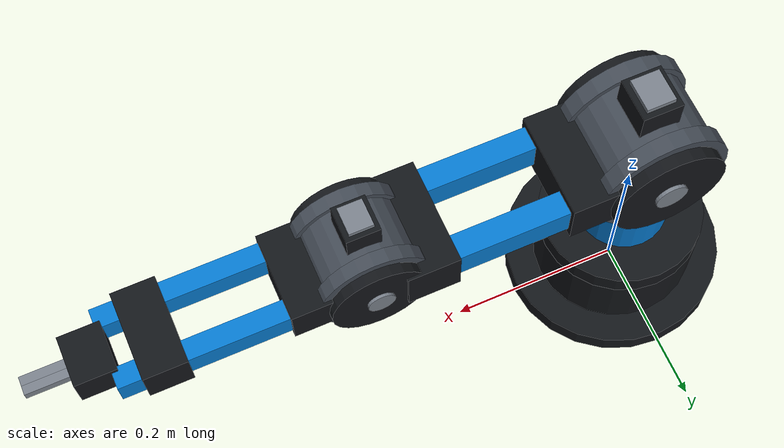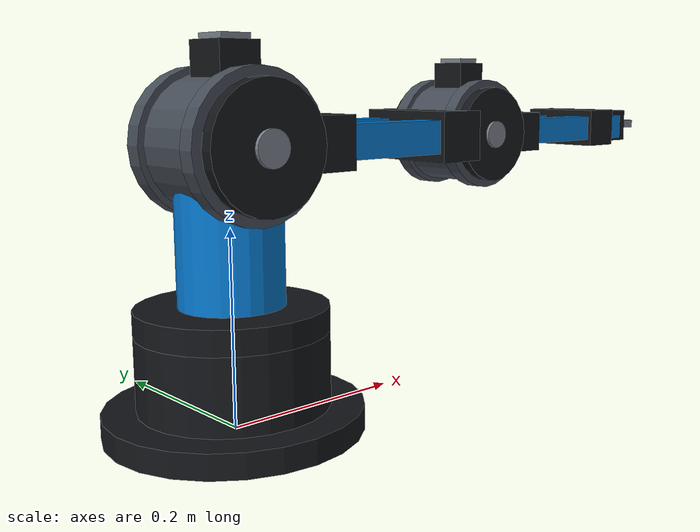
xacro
<?xml version="1.0"?>
<robot xmlns:xacro="http://www.ros.org/wiki/xacro" name="arm_digital_twin">
  <xacro:arg name="arm_model" default="moveo"/>
  <xacro:property name="arm_model" value="$(arg arm_model)"/>

  <xacro:property name="wrist_length" value="0.14"/>
  <xacro:property name="base_radius" value="0.085"/>
  <xacro:property name="link_radius" value="0.055"/>

  <xacro:if value="${arm_model == 'moveo'}">
    <xacro:property name="base_height" value="0.28"/>
    <xacro:property name="link1_length" value="0.32"/>
    <xacro:property name="link2_length" value="0.27"/>
    <xacro:property name="gripper_length" value="0.085"/>
    <xacro:property name="gripper_width" value="0.010"/>
    <xacro:property name="base_radius" value="0.095"/>
    <xacro:property name="link_radius" value="0.050"/>
  </xacro:if>
  <xacro:if value="${arm_model == 'mitsubishi'}">
    <xacro:property name="base_height" value="0.36"/>
    <xacro:property name="link1_length" value="0.40"/>
    <xacro:property name="link2_length" value="0.32"/>
    <xacro:property name="gripper_length" value="0.105"/>
    <xacro:property name="gripper_width" value="0.014"/>
    <xacro:property name="base_radius" value="0.12"/>
    <xacro:property name="link_radius" value="0.075"/>
  </xacro:if>
  <xacro:if value="${arm_model == 'generic'}">
    <xacro:property name="base_height" value="0.24"/>
    <xacro:property name="link1_length" value="0.25"/>
    <xacro:property name="link2_length" value="0.21"/>
    <xacro:property name="gripper_length" value="0.070"/>
    <xacro:property name="gripper_width" value="0.008"/>
    <xacro:property name="base_radius" value="0.075"/>
    <xacro:property name="link_radius" value="0.035"/>
  </xacro:if>
  <xacro:if value="${arm_model == 'franka'}">
    <xacro:property name="base_height" value="0.30"/>
    <xacro:property name="link1_length" value="0.35"/>
    <xacro:property name="link2_length" value="0.30"/>
    <xacro:property name="gripper_length" value="0.10"/>
    <xacro:property name="gripper_width" value="0.012"/>
  </xacro:if>

  <xacro:if value="${arm_model == 'moveo'}">
    <material name="Arm">
      <color rgba="0.02 0.48 0.82 1.0"/>
    </material>
  </xacro:if>
  <xacro:if value="${arm_model == 'mitsubishi'}">
    <material name="Arm">
      <color rgba="0.78 0.12 0.08 1.0"/>
    </material>
  </xacro:if>
  <xacro:if value="${arm_model == 'generic'}">
    <material name="Arm">
      <color rgba="0.92 0.62 0.06 1.0"/>
    </material>
  </xacro:if>
  <xacro:if value="${arm_model == 'franka'}">
    <material name="Arm">
      <color rgba="0.88 0.89 0.91 1.0"/>
    </material>
  </xacro:if>

  <material name="Dark">
    <color rgba="0.075 0.085 0.10 1.0"/>
  </material>
  <material name="Metal">
    <color rgba="0.48 0.51 0.55 1.0"/>
  </material>
  <material name="JointAccent">
    <color rgba="0.27 0.30 0.34 1.0"/>
  </material>

  <link name="base_link">
    <visual>
      <geometry><cylinder radius="${base_radius}" length="0.10"/></geometry>
      <origin xyz="0 0 0.05"/>
      <material name="Dark"/>
    </visual>
    <visual>
      <geometry><cylinder radius="${base_radius * 1.35}" length="0.025"/></geometry>
      <origin xyz="0 0 0.0125"/>
      <material name="Dark"/>
    </visual>
    <collision>
      <geometry><cylinder radius="${base_radius}" length="0.10"/></geometry>
      <origin xyz="0 0 0.05"/>
    </collision>
    <inertial>
      <origin xyz="0 0 0.05"/>
      <mass value="5.0"/>
      <inertia ixx="0.02" ixy="0" ixz="0" iyy="0.02" iyz="0" izz="0.01"/>
    </inertial>
  </link>

  <link name="base_rot">
    <visual>
      <geometry>
        <cylinder radius="${link_radius * 1.05}" length="${base_height - 0.10}"/>
      </geometry>
      <origin xyz="0 0 ${(base_height - 0.10) / 2}"/>
      <material name="Arm"/>
    </visual>
    <visual>
      <geometry><cylinder radius="${base_radius}" length="0.025"/></geometry>
      <origin xyz="0 0 0.0125"/>
      <material name="Dark"/>
    </visual>
    <collision>
      <geometry>
        <cylinder radius="${link_radius * 1.05}" length="${base_height - 0.10}"/>
      </geometry>
      <origin xyz="0 0 ${(base_height - 0.10) / 2}"/>
    </collision>
    <inertial>
      <origin xyz="0 0 ${(base_height - 0.08) / 2}"/>
      <mass value="1.5"/>
      <inertia ixx="0.01" ixy="0" ixz="0" iyy="0.01" iyz="0" izz="0.01"/>
    </inertial>
  </link>

  <joint name="joint1" type="revolute">
    <parent link="base_link"/>
    <child link="base_rot"/>
    <origin xyz="0 0 0.10"/>
    <axis xyz="0 0 1"/>
    <limit lower="-2.967" upper="2.967" effort="80" velocity="2.0"/>
  </joint>

  <xacro:macro name="arm_segment" params="name length radius">
    <link name="${name}">
      <xacro:if value="${arm_model == 'moveo'}">
        <visual>
          <geometry>
            <box size="${length - radius * 1.2} ${radius * 0.55} ${radius * 0.72}"/>
          </geometry>
          <origin xyz="${(length + radius * 1.2) / 2} ${radius * 0.82} 0"/>
          <material name="Arm"/>
        </visual>
        <visual>
          <geometry>
            <box size="${length - radius * 1.2} ${radius * 0.55} ${radius * 0.72}"/>
          </geometry>
          <origin xyz="${(length + radius * 1.2) / 2} ${-radius * 0.82} 0"/>
          <material name="Arm"/>
        </visual>
        <visual>
          <geometry><box size="${radius * 1.15} ${radius * 2.4} ${radius * 1.1}"/></geometry>
          <origin xyz="${length * 0.25} 0 0"/>
          <material name="Dark"/>
        </visual>
        <visual>
          <geometry><box size="${radius * 1.15} ${radius * 2.4} ${radius * 1.1}"/></geometry>
          <origin xyz="${length * 0.82} 0 0"/>
          <material name="Dark"/>
        </visual>
      </xacro:if>
      <xacro:if value="${arm_model == 'mitsubishi'}">
        <visual>
          <geometry>
            <cylinder radius="${radius}" length="${length - radius * 1.2}"/>
          </geometry>
          <origin xyz="${(length + radius * 1.2) / 2} 0 0" rpy="0 ${pi / 2} 0"/>
          <material name="Arm"/>
        </visual>
        <visual>
          <geometry><cylinder radius="${radius * 1.10}" length="${radius * 0.55}"/></geometry>
          <origin xyz="${radius * 1.45} 0 0" rpy="0 ${pi / 2} 0"/>
          <material name="Dark"/>
        </visual>
        <visual>
          <geometry><cylinder radius="${radius * 1.10}" length="${radius * 0.55}"/></geometry>
          <origin xyz="${length - radius * 0.35} 0 0" rpy="0 ${pi / 2} 0"/>
          <material name="Dark"/>
        </visual>
      </xacro:if>
      <xacro:if value="${arm_model == 'generic'}">
        <visual>
          <geometry>
            <box size="${length - radius * 1.2} ${radius} ${radius * 1.10}"/>
          </geometry>
          <origin xyz="${(length + radius * 1.2) / 2} 0 0"/>
          <material name="Arm"/>
        </visual>
        <visual>
          <geometry>
            <box size="${(length - radius * 1.2) * 0.72} ${radius * 1.72} ${radius * 0.18}"/>
          </geometry>
          <origin xyz="${(length + radius * 1.2) / 2} 0 ${radius * 0.58}"/>
          <material name="Dark"/>
        </visual>
      </xacro:if>
      <xacro:if value="${arm_model == 'franka'}">
        <visual>
          <geometry><cylinder radius="${radius}" length="${length - radius * 1.2}"/></geometry>
          <origin xyz="${(length + radius * 1.2) / 2} 0 0" rpy="0 ${pi / 2} 0"/>
          <material name="Arm"/>
        </visual>
      </xacro:if>
      <collision>
        <geometry><box size="${length} ${radius * 2.4} ${radius * 2.0}"/></geometry>
        <origin xyz="${length / 2} 0 0"/>
      </collision>
      <inertial>
        <origin xyz="${length / 2} 0 0"/>
        <mass value="1.0"/>
        <inertia ixx="0.01" ixy="0" ixz="0" iyy="0.02" iyz="0" izz="0.02"/>
      </inertial>
    </link>
    <link name="${name}_pivot_housing">
      <visual>
        <geometry><cylinder radius="${radius * 1.35}" length="${radius * 1.50}"/></geometry>
        <origin xyz="0 0 0" rpy="${pi / 2} 0 0"/>
        <material name="joint_accent">
          <color rgba="0.27 0.30 0.34 1.0"/>
        </material>
      </visual>
      <visual>
        <geometry><cylinder radius="${radius * 1.48}" length="${radius * 0.38}"/></geometry>
        <origin xyz="0 ${radius * 0.92} 0" rpy="${pi / 2} 0 0"/>
        <material name="joint_accent">
          <color rgba="0.27 0.30 0.34 1.0"/>
        </material>
      </visual>
      <visual>
        <geometry><cylinder radius="${radius * 1.48}" length="${radius * 0.38}"/></geometry>
        <origin xyz="0 ${-radius * 0.92} 0" rpy="${pi / 2} 0 0"/>
        <material name="joint_accent">
          <color rgba="0.27 0.30 0.34 1.0"/>
        </material>
      </visual>
    </link>
    <joint name="${name}_pivot_housing_fixed" type="fixed">
      <parent link="${name}"/>
      <child link="${name}_pivot_housing"/>
    </joint>
    <link name="${name}_pivot_covers">
      <visual>
        <geometry><box size="${radius * 0.90} ${radius} ${radius * 0.80}"/></geometry>
        <origin xyz="0 0 ${radius * 1.55}"/>
        <material name="Dark"/>
      </visual>
      <visual>
        <geometry><cylinder radius="${radius * 1.28}" length="${radius * 0.28}"/></geometry>
        <origin xyz="0 ${radius * 1.25} 0" rpy="${pi / 2} 0 0"/>
        <material name="Dark"/>
      </visual>
      <visual>
        <geometry><cylinder radius="${radius * 1.28}" length="${radius * 0.28}"/></geometry>
        <origin xyz="0 ${-radius * 1.25} 0" rpy="${pi / 2} 0 0"/>
        <material name="Dark"/>
      </visual>
    </link>
    <joint name="${name}_pivot_covers_fixed" type="fixed">
      <parent link="${name}"/>
      <child link="${name}_pivot_covers"/>
    </joint>
    <link name="${name}_pivot_metal">
      <visual>
        <geometry><box size="${radius * 0.65} ${radius * 0.75} ${radius * 0.12}"/></geometry>
        <origin xyz="0 0 ${radius * 2.01}"/>
        <material name="Metal"/>
      </visual>
      <visual>
        <geometry><cylinder radius="${radius * 0.36}" length="${radius * 0.16}"/></geometry>
        <origin xyz="0 ${radius * 1.39} 0" rpy="${pi / 2} 0 0"/>
        <material name="Metal"/>
      </visual>
      <visual>
        <geometry><cylinder radius="${radius * 0.36}" length="${radius * 0.16}"/></geometry>
        <origin xyz="0 ${-radius * 1.39} 0" rpy="${pi / 2} 0 0"/>
        <material name="Metal"/>
      </visual>
    </link>
    <joint name="${name}_pivot_metal_fixed" type="fixed">
      <parent link="${name}"/>
      <child link="${name}_pivot_metal"/>
    </joint>
  </xacro:macro>

  <xacro:arm_segment name="link1" length="${link1_length}" radius="${link_radius}"/>
  <joint name="joint2" type="revolute">
    <parent link="base_rot"/>
    <child link="link1"/>
    <origin xyz="0 0 ${base_height - 0.10}"/>
    <axis xyz="0 1 0"/>
    <limit lower="-1.5708" upper="1.5708" effort="80" velocity="2.0"/>
  </joint>

  <xacro:arm_segment name="link2" length="${link2_length}" radius="${link_radius * 0.82}"/>
  <joint name="joint3" type="revolute">
    <parent link="link1"/>
    <child link="link2"/>
    <origin xyz="${link1_length} 0 0"/>
    <axis xyz="0 1 0"/>
    <limit lower="-1.5708" upper="1.5708" effort="60" velocity="2.0"/>
  </joint>

  <xacro:if value="${arm_model == 'mitsubishi'}">
    <link name="link3">
      <visual>
        <geometry>
          <cylinder radius="${link_radius * 0.72}" length="0.08"/>
        </geometry>
        <origin xyz="0.04 0 0" rpy="0 ${pi / 2} 0"/>
        <material name="Arm"/>
      </visual>
      <visual>
        <geometry>
          <cylinder radius="${link_radius}" length="0.025"/>
        </geometry>
        <origin xyz="0.0125 0 0" rpy="0 ${pi / 2} 0"/>
        <material name="Dark"/>
      </visual>
      <visual>
        <geometry>
          <cylinder radius="${link_radius * 0.84}" length="0.018"/>
        </geometry>
        <origin xyz="0.069 0 0" rpy="0 ${pi / 2} 0"/>
        <material name="JointAccent"/>
      </visual>
      <collision>
        <geometry><box size="0.08 ${link_radius * 1.4} ${link_radius * 1.4}"/></geometry>
        <origin xyz="0.04 0 0"/>
      </collision>
      <inertial>
        <origin xyz="0.04 0 0"/>
        <mass value="0.3"/>
        <inertia ixx="0.001" ixy="0" ixz="0" iyy="0.001" iyz="0" izz="0.001"/>
      </inertial>
    </link>
    <joint name="mitsubishi_wrist" type="fixed">
      <parent link="link2"/>
      <child link="link3"/>
      <origin xyz="${link2_length} 0 0"/>
    </joint>
  </xacro:if>

  <xacro:if value="${arm_model == 'franka'}">
    <xacro:arm_segment name="link3" length="0.22" radius="0.050"/>
    <joint name="joint4" type="revolute">
      <parent link="link2"/>
      <child link="link3"/>
      <origin xyz="${link2_length} 0 0"/>
      <axis xyz="1 0 0"/>
      <limit lower="-2.967" upper="2.967" effort="45" velocity="2.0"/>
    </joint>

    <xacro:arm_segment name="link4" length="0.20" radius="0.043"/>
    <joint name="joint5" type="revolute">
      <parent link="link3"/>
      <child link="link4"/>
      <origin xyz="0.22 0 0"/>
      <axis xyz="0 1 0"/>
      <limit lower="-2.094" upper="2.094" effort="35" velocity="2.0"/>
    </joint>

    <xacro:arm_segment name="link5" length="0.15" radius="0.038"/>
    <joint name="joint6" type="revolute">
      <parent link="link4"/>
      <child link="link5"/>
      <origin xyz="0.20 0 0"/>
      <axis xyz="1 0 0"/>
      <limit lower="-2.967" upper="2.967" effort="25" velocity="2.0"/>
    </joint>

    <xacro:arm_segment name="link6" length="${wrist_length}" radius="0.034"/>
    <joint name="joint7" type="revolute">
      <parent link="link5"/>
      <child link="link6"/>
      <origin xyz="0.15 0 0"/>
      <axis xyz="0 1 0"/>
      <limit lower="-2.967" upper="2.967" effort="15" velocity="2.0"/>
    </joint>
  </xacro:if>

  <link name="gripper_base">
    <visual>
      <geometry>
        <box size="${gripper_length * 0.52} ${gripper_width * 5.5} ${gripper_width * 4.0}"/>
      </geometry>
      <origin xyz="${gripper_length * 0.18} 0 0"/>
      <material name="Dark"/>
    </visual>
    <inertial>
      <mass value="0.1"/>
      <inertia ixx="0.001" ixy="0" ixz="0" iyy="0.001" iyz="0" izz="0.001"/>
    </inertial>
  </link>

  <xacro:if value="${arm_model == 'franka'}">
    <joint name="gripper_mount" type="fixed">
      <parent link="link6"/>
      <child link="gripper_base"/>
      <origin xyz="${wrist_length} 0 0"/>
    </joint>
  </xacro:if>
  <xacro:unless value="${arm_model == 'franka'}">
    <joint name="gripper_mount" type="fixed">
      <xacro:if value="${arm_model == 'mitsubishi'}">
        <parent link="link3"/>
      </xacro:if>
      <xacro:unless value="${arm_model == 'mitsubishi'}">
        <parent link="link2"/>
      </xacro:unless>
      <child link="gripper_base"/>
      <xacro:if value="${arm_model == 'mitsubishi'}">
        <origin xyz="0.08 0 0"/>
      </xacro:if>
      <xacro:unless value="${arm_model == 'mitsubishi'}">
        <origin xyz="${link2_length} 0 0"/>
      </xacro:unless>
    </joint>
  </xacro:unless>

  <link name="finger_left">
    <visual>
      <geometry><box size="${gripper_length} ${gripper_width} ${gripper_width}"/></geometry>
      <origin xyz="${gripper_length / 2} ${gripper_width / 2} 0"/>
      <material name="Metal"/>
    </visual>
    <collision>
      <geometry><box size="${gripper_length} ${gripper_width} ${gripper_width}"/></geometry>
      <origin xyz="${gripper_length / 2} ${gripper_width / 2} 0"/>
    </collision>
    <inertial>
      <mass value="0.05"/>
      <inertia ixx="0.0001" ixy="0" ixz="0" iyy="0.0001" iyz="0" izz="0.0001"/>
    </inertial>
  </link>
  <joint name="gripper_joint" type="prismatic">
    <parent link="gripper_base"/>
    <child link="finger_left"/>
    <axis xyz="0 1 0"/>
    <limit lower="0" upper="0.04" effort="20" velocity="0.2"/>
  </joint>

  <link name="finger_right">
    <visual>
      <geometry><box size="${gripper_length} ${gripper_width} ${gripper_width}"/></geometry>
      <origin xyz="${gripper_length / 2} ${-gripper_width / 2} 0"/>
      <material name="Metal"/>
    </visual>
    <collision>
      <geometry><box size="${gripper_length} ${gripper_width} ${gripper_width}"/></geometry>
      <origin xyz="${gripper_length / 2} ${-gripper_width / 2} 0"/>
    </collision>
    <inertial>
      <mass value="0.05"/>
      <inertia ixx="0.0001" ixy="0" ixz="0" iyy="0.0001" iyz="0" izz="0.0001"/>
    </inertial>
  </link>
  <joint name="gripper_joint_mirror" type="prismatic">
    <parent link="gripper_base"/>
    <child link="finger_right"/>
    <axis xyz="0 -1 0"/>
    <limit lower="0" upper="0.04" effort="20" velocity="0.2"/>
  </joint>

  <ros2_control name="ArmSystem" type="system">
    <hardware>
      <plugin>gazebo_ros2_control/GazeboSystem</plugin>
    </hardware>
    <joint name="joint1">
      <command_interface name="position"/>
      <state_interface name="position"/>
      <state_interface name="velocity"/>
    </joint>
    <joint name="joint2">
      <command_interface name="position"/>
      <state_interface name="position"/>
      <state_interface name="velocity"/>
    </joint>
    <joint name="joint3">
      <command_interface name="position"/>
      <state_interface name="position"/>
      <state_interface name="velocity"/>
    </joint>
    <xacro:if value="${arm_model == 'franka'}">
      <joint name="joint4">
        <command_interface name="position"/>
        <state_interface name="position"/>
        <state_interface name="velocity"/>
      </joint>
      <joint name="joint5">
        <command_interface name="position"/>
        <state_interface name="position"/>
        <state_interface name="velocity"/>
      </joint>
      <joint name="joint6">
        <command_interface name="position"/>
        <state_interface name="position"/>
        <state_interface name="velocity"/>
      </joint>
      <joint name="joint7">
        <command_interface name="position"/>
        <state_interface name="position"/>
        <state_interface name="velocity"/>
      </joint>
    </xacro:if>
    <joint name="gripper_joint">
      <command_interface name="position"/>
      <state_interface name="position"/>
      <state_interface name="velocity"/>
    </joint>
    <joint name="gripper_joint_mirror">
      <command_interface name="position"/>
      <state_interface name="position"/>
      <state_interface name="velocity"/>
    </joint>
  </ros2_control>
</robot>
